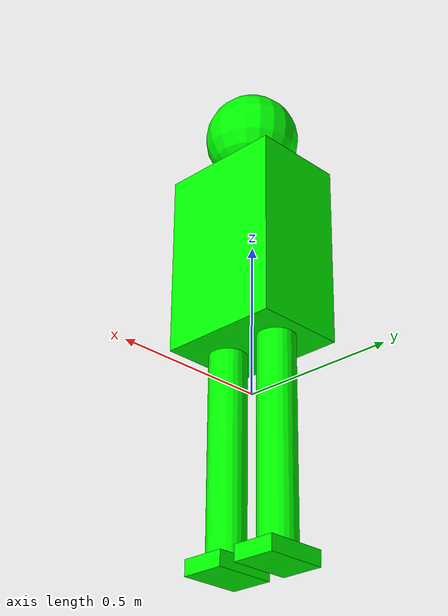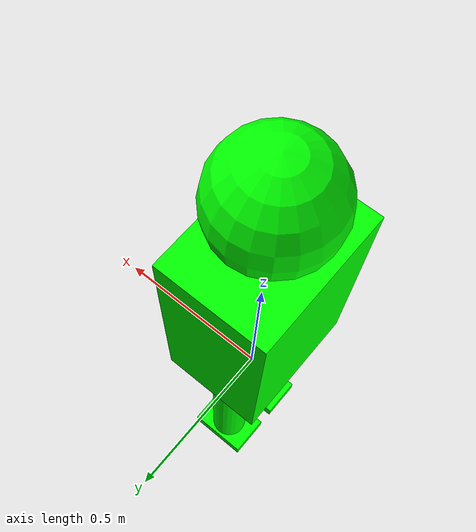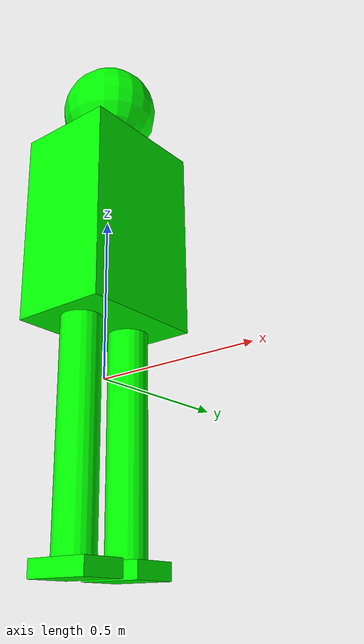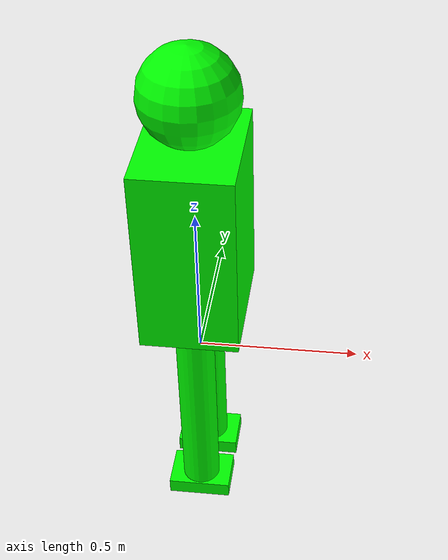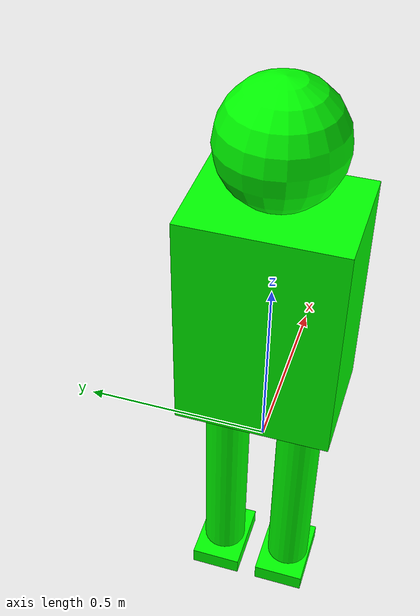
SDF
<?xml version='1.0'?>
<sdf version='1.7'>
  <model name='HumanoidRobot'>
    <link name='link_1'>
      <inertial>
        <mass>1</mass>
        <inertia>
          <ixx>0.166667</ixx>
          <ixy>0</ixy>
          <ixz>0</ixz>
          <iyy>0.166667</iyy>
          <iyz>0</iyz>
          <izz>0.166667</izz>
        </inertia>
        <pose>0 0 0 0 -0 0</pose>
      </inertial>
      <pose>0 -0.000833 0.458333 0 -0 0</pose>
      <gravity>1</gravity>
      <self_collide>0</self_collide>
      <kinematic>0</kinematic>
      <enable_wind>0</enable_wind>
      <visual name='visual'>
        <pose>0 0 0 0 -0 0</pose>
        <geometry>
          <box>
            <size>0.3 0.4 0.6</size>
          </box>
        </geometry>
        <material>
          <lighting>1</lighting>
          <script>
            <uri>file://media/materials/scripts/gazebo.material</uri>
            <name>Gazebo/Grey</name>
          </script>
          <shader type='pixel'>
            <normal_map>__default__</normal_map>
          </shader>
          <ambient>0 1 0 1</ambient>
          <diffuse>0.7 0.7 0.7 1</diffuse>
          <specular>0.01 0.01 0.01 1</specular>
          <emissive>0 0 0 1</emissive>
        </material>
        <transparency>0</transparency>
        <cast_shadows>1</cast_shadows>
      </visual>
      <collision name='collision'>
        <laser_retro>0</laser_retro>
        <max_contacts>10</max_contacts>
        <pose>0 0 0 0 -0 0</pose>
        <geometry>
          <box>
            <size>0.3 0.4 0.6</size>
          </box>
        </geometry>
        <surface>
          <friction>
            <ode>
              <mu>1</mu>
              <mu2>1</mu2>
              <fdir1>0 0 0</fdir1>
              <slip1>0</slip1>
              <slip2>0</slip2>
            </ode>
            <torsional>
              <coefficient>1</coefficient>
              <patch_radius>0</patch_radius>
              <surface_radius>0</surface_radius>
              <use_patch_radius>1</use_patch_radius>
              <ode>
                <slip>0</slip>
              </ode>
            </torsional>
          </friction>
          <bounce>
            <restitution_coefficient>0</restitution_coefficient>
            <threshold>1e+06</threshold>
          </bounce>
          <contact>
            <collide_without_contact>0</collide_without_contact>
            <collide_without_contact_bitmask>1</collide_without_contact_bitmask>
            <collide_bitmask>1</collide_bitmask>
            <ode>
              <soft_cfm>0</soft_cfm>
              <soft_erp>0.2</soft_erp>
              <kp>1e+13</kp>
              <kd>1</kd>
              <max_vel>0.01</max_vel>
              <min_depth>0</min_depth>
            </ode>
            <bullet>
              <split_impulse>1</split_impulse>
              <split_impulse_penetration_threshold>-0.01</split_impulse_penetration_threshold>
              <soft_cfm>0</soft_cfm>
              <soft_erp>0.2</soft_erp>
              <kp>1e+13</kp>
              <kd>1</kd>
            </bullet>
          </contact>
        </surface>
      </collision>
    </link>
    <link name='link_2'>
      <inertial>
        <mass>1</mass>
        <inertia>
          <ixx>0.145833</ixx>
          <ixy>0</ixy>
          <ixz>0</ixz>
          <iyy>0.145833</iyy>
          <iyz>0</iyz>
          <izz>0.125</izz>
        </inertia>
        <pose>0 0 0 0 -0 0</pose>
      </inertial>
      <pose>0 -0.100833 -0.166667 0 -0 0</pose>
      <gravity>1</gravity>
      <self_collide>0</self_collide>
      <kinematic>0</kinematic>
      <enable_wind>0</enable_wind>
      <visual name='visual'>
        <pose>0 0 0 0 -0 0</pose>
        <geometry>
          <cylinder>
            <radius>0.06</radius>
            <length>0.65</length>
          </cylinder>
        </geometry>
        <material>
          <lighting>1</lighting>
          <script>
            <uri>file://media/materials/scripts/gazebo.material</uri>
            <name>Gazebo/Grey</name>
          </script>
          <shader type='pixel'>
            <normal_map>__default__</normal_map>
          </shader>
          <ambient>0 1 0 1</ambient>
          <diffuse>0.7 0.7 0.7 1</diffuse>
          <specular>0.01 0.01 0.01 1</specular>
          <emissive>0 0 0 1</emissive>
        </material>
        <transparency>0</transparency>
        <cast_shadows>1</cast_shadows>
      </visual>
      <collision name='collision'>
        <laser_retro>0</laser_retro>
        <max_contacts>10</max_contacts>
        <pose>0 0 0 0 -0 0</pose>
        <geometry>
          <cylinder>
            <radius>0.06</radius>
            <length>0.65</length>
          </cylinder>
        </geometry>
        <surface>
          <friction>
            <ode>
              <mu>1</mu>
              <mu2>1</mu2>
              <fdir1>0 0 0</fdir1>
              <slip1>0</slip1>
              <slip2>0</slip2>
            </ode>
            <torsional>
              <coefficient>1</coefficient>
              <patch_radius>0</patch_radius>
              <surface_radius>0</surface_radius>
              <use_patch_radius>1</use_patch_radius>
              <ode>
                <slip>0</slip>
              </ode>
            </torsional>
          </friction>
          <bounce>
            <restitution_coefficient>0</restitution_coefficient>
            <threshold>1e+06</threshold>
          </bounce>
          <contact>
            <collide_without_contact>0</collide_without_contact>
            <collide_without_contact_bitmask>1</collide_without_contact_bitmask>
            <collide_bitmask>1</collide_bitmask>
            <ode>
              <soft_cfm>0</soft_cfm>
              <soft_erp>0.2</soft_erp>
              <kp>1e+13</kp>
              <kd>1</kd>
              <max_vel>0.01</max_vel>
              <min_depth>0</min_depth>
            </ode>
            <bullet>
              <split_impulse>1</split_impulse>
              <split_impulse_penetration_threshold>-0.01</split_impulse_penetration_threshold>
              <soft_cfm>0</soft_cfm>
              <soft_erp>0.2</soft_erp>
              <kp>1e+13</kp>
              <kd>1</kd>
            </bullet>
          </contact>
        </surface>
      </collision>
    </link>
    <link name='link_2_clone'>
      <inertial>
        <mass>1</mass>
        <inertia>
          <ixx>0.145833</ixx>
          <ixy>0</ixy>
          <ixz>0</ixz>
          <iyy>0.145833</iyy>
          <iyz>0</iyz>
          <izz>0.125</izz>
        </inertia>
        <pose>0 0 0 0 -0 0</pose>
      </inertial>
      <pose>0 0.099167 -0.166667 0 -0 0</pose>
      <gravity>1</gravity>
      <self_collide>0</self_collide>
      <kinematic>0</kinematic>
      <enable_wind>0</enable_wind>
      <visual name='visual'>
        <pose>0 0 0 0 -0 0</pose>
        <geometry>
          <cylinder>
            <radius>0.06</radius>
            <length>0.65</length>
          </cylinder>
        </geometry>
        <material>
          <lighting>1</lighting>
          <script>
            <uri>file://media/materials/scripts/gazebo.material</uri>
            <name>Gazebo/Grey</name>
          </script>
          <shader type='pixel'>
            <normal_map>__default__</normal_map>
          </shader>
          <ambient>0 1 0 1</ambient>
          <diffuse>0.7 0.7 0.7 1</diffuse>
          <specular>0.01 0.01 0.01 1</specular>
          <emissive>0 0 0 1</emissive>
        </material>
        <transparency>0</transparency>
        <cast_shadows>1</cast_shadows>
      </visual>
      <collision name='collision'>
        <laser_retro>0</laser_retro>
        <max_contacts>10</max_contacts>
        <pose>0 0 0 0 -0 0</pose>
        <geometry>
          <cylinder>
            <radius>0.06</radius>
            <length>0.65</length>
          </cylinder>
        </geometry>
        <surface>
          <friction>
            <ode>
              <mu>1</mu>
              <mu2>1</mu2>
              <fdir1>0 0 0</fdir1>
              <slip1>0</slip1>
              <slip2>0</slip2>
            </ode>
            <torsional>
              <coefficient>1</coefficient>
              <patch_radius>0</patch_radius>
              <surface_radius>0</surface_radius>
              <use_patch_radius>1</use_patch_radius>
              <ode>
                <slip>0</slip>
              </ode>
            </torsional>
          </friction>
          <bounce>
            <restitution_coefficient>0</restitution_coefficient>
            <threshold>1e+06</threshold>
          </bounce>
          <contact>
            <collide_without_contact>0</collide_without_contact>
            <collide_without_contact_bitmask>1</collide_without_contact_bitmask>
            <collide_bitmask>1</collide_bitmask>
            <ode>
              <soft_cfm>0</soft_cfm>
              <soft_erp>0.2</soft_erp>
              <kp>1e+13</kp>
              <kd>1</kd>
              <max_vel>0.01</max_vel>
              <min_depth>0</min_depth>
            </ode>
            <bullet>
              <split_impulse>1</split_impulse>
              <split_impulse_penetration_threshold>-0.01</split_impulse_penetration_threshold>
              <soft_cfm>0</soft_cfm>
              <soft_erp>0.2</soft_erp>
              <kp>1e+13</kp>
              <kd>1</kd>
            </bullet>
          </contact>
        </surface>
      </collision>
    </link>
    <link name='link_3'>
      <inertial>
        <mass>1</mass>
        <inertia>
          <ixx>0.166667</ixx>
          <ixy>0</ixy>
          <ixz>0</ixz>
          <iyy>0.166667</iyy>
          <iyz>0</iyz>
          <izz>0.166667</izz>
        </inertia>
        <pose>0 0 0 0 -0 0</pose>
      </inertial>
      <pose>0 -0.095833 -0.516667 0 -0 0</pose>
      <gravity>1</gravity>
      <self_collide>0</self_collide>
      <kinematic>0</kinematic>
      <enable_wind>0</enable_wind>
      <visual name='visual'>
        <pose>0 0 0 0 -0 0</pose>
        <geometry>
          <box>
            <size>0.2 0.14 0.05</size>
          </box>
        </geometry>
        <material>
          <lighting>1</lighting>
          <script>
            <uri>file://media/materials/scripts/gazebo.material</uri>
            <name>Gazebo/Grey</name>
          </script>
          <shader type='pixel'>
            <normal_map>__default__</normal_map>
          </shader>
          <ambient>0 1 0 1</ambient>
          <diffuse>0.7 0.7 0.7 1</diffuse>
          <specular>0.01 0.01 0.01 1</specular>
          <emissive>0 0 0 1</emissive>
        </material>
        <transparency>0</transparency>
        <cast_shadows>1</cast_shadows>
      </visual>
      <collision name='collision'>
        <laser_retro>0</laser_retro>
        <max_contacts>10</max_contacts>
        <pose>0 0 0 0 -0 0</pose>
        <geometry>
          <box>
            <size>0.2 0.14 0.05</size>
          </box>
        </geometry>
        <surface>
          <friction>
            <ode>
              <mu>1</mu>
              <mu2>1</mu2>
              <fdir1>0 0 0</fdir1>
              <slip1>0</slip1>
              <slip2>0</slip2>
            </ode>
            <torsional>
              <coefficient>1</coefficient>
              <patch_radius>0</patch_radius>
              <surface_radius>0</surface_radius>
              <use_patch_radius>1</use_patch_radius>
              <ode>
                <slip>0</slip>
              </ode>
            </torsional>
          </friction>
          <bounce>
            <restitution_coefficient>0</restitution_coefficient>
            <threshold>1e+06</threshold>
          </bounce>
          <contact>
            <collide_without_contact>0</collide_without_contact>
            <collide_without_contact_bitmask>1</collide_without_contact_bitmask>
            <collide_bitmask>1</collide_bitmask>
            <ode>
              <soft_cfm>0</soft_cfm>
              <soft_erp>0.2</soft_erp>
              <kp>1e+13</kp>
              <kd>1</kd>
              <max_vel>0.01</max_vel>
              <min_depth>0</min_depth>
            </ode>
            <bullet>
              <split_impulse>1</split_impulse>
              <split_impulse_penetration_threshold>-0.01</split_impulse_penetration_threshold>
              <soft_cfm>0</soft_cfm>
              <soft_erp>0.2</soft_erp>
              <kp>1e+13</kp>
              <kd>1</kd>
            </bullet>
          </contact>
        </surface>
      </collision>
    </link>
    <link name='link_3_clone'>
      <inertial>
        <mass>1</mass>
        <inertia>
          <ixx>0.166667</ixx>
          <ixy>0</ixy>
          <ixz>0</ixz>
          <iyy>0.166667</iyy>
          <iyz>0</iyz>
          <izz>0.166667</izz>
        </inertia>
        <pose>0 0 0 0 -0 0</pose>
      </inertial>
      <pose>0 0.099167 -0.516667 0 -0 0</pose>
      <gravity>1</gravity>
      <self_collide>0</self_collide>
      <kinematic>0</kinematic>
      <enable_wind>0</enable_wind>
      <visual name='visual'>
        <pose>0 0 0 0 -0 0</pose>
        <geometry>
          <box>
            <size>0.2 0.14 0.05</size>
          </box>
        </geometry>
        <material>
          <lighting>1</lighting>
          <script>
            <uri>file://media/materials/scripts/gazebo.material</uri>
            <name>Gazebo/Grey</name>
          </script>
          <shader type='pixel'>
            <normal_map>__default__</normal_map>
          </shader>
          <ambient>0 1 0 1</ambient>
          <diffuse>0.7 0.7 0.7 1</diffuse>
          <specular>0.01 0.01 0.01 1</specular>
          <emissive>0 0 0 1</emissive>
        </material>
        <transparency>0</transparency>
        <cast_shadows>1</cast_shadows>
      </visual>
      <collision name='collision'>
        <laser_retro>0</laser_retro>
        <max_contacts>10</max_contacts>
        <pose>0 0 0 0 -0 0</pose>
        <geometry>
          <box>
            <size>0.2 0.14 0.05</size>
          </box>
        </geometry>
        <surface>
          <friction>
            <ode>
              <mu>1</mu>
              <mu2>1</mu2>
              <fdir1>0 0 0</fdir1>
              <slip1>0</slip1>
              <slip2>0</slip2>
            </ode>
            <torsional>
              <coefficient>1</coefficient>
              <patch_radius>0</patch_radius>
              <surface_radius>0</surface_radius>
              <use_patch_radius>1</use_patch_radius>
              <ode>
                <slip>0</slip>
              </ode>
            </torsional>
          </friction>
          <bounce>
            <restitution_coefficient>0</restitution_coefficient>
            <threshold>1e+06</threshold>
          </bounce>
          <contact>
            <collide_without_contact>0</collide_without_contact>
            <collide_without_contact_bitmask>1</collide_without_contact_bitmask>
            <collide_bitmask>1</collide_bitmask>
            <ode>
              <soft_cfm>0</soft_cfm>
              <soft_erp>0.2</soft_erp>
              <kp>1e+13</kp>
              <kd>1</kd>
              <max_vel>0.01</max_vel>
              <min_depth>0</min_depth>
            </ode>
            <bullet>
              <split_impulse>1</split_impulse>
              <split_impulse_penetration_threshold>-0.01</split_impulse_penetration_threshold>
              <soft_cfm>0</soft_cfm>
              <soft_erp>0.2</soft_erp>
              <kp>1e+13</kp>
              <kd>1</kd>
            </bullet>
          </contact>
        </surface>
      </collision>
    </link>
    <link name='link_4'>
      <inertial>
        <mass>1</mass>
        <inertia>
          <ixx>0.1</ixx>
          <ixy>0</ixy>
          <ixz>0</ixz>
          <iyy>0.1</iyy>
          <iyz>0</iyz>
          <izz>0.1</izz>
        </inertia>
        <pose>0 0 0 0 -0 0</pose>
      </inertial>
      <pose>0 -0.000833 0.908333 0 -0 0</pose>
      <gravity>1</gravity>
      <self_collide>0</self_collide>
      <kinematic>0</kinematic>
      <enable_wind>0</enable_wind>
      <visual name='visual'>
        <pose>0 0 0 0 -0 0</pose>
        <geometry>
          <sphere>
            <radius>0.15</radius>
          </sphere>
        </geometry>
        <material>
          <lighting>1</lighting>
          <script>
            <uri>file://media/materials/scripts/gazebo.material</uri>
            <name>Gazebo/Grey</name>
          </script>
          <shader type='pixel'>
            <normal_map>__default__</normal_map>
          </shader>
          <ambient>0 1 0 1</ambient>
          <diffuse>0.7 0.7 0.7 1</diffuse>
          <specular>0.01 0.01 0.01 1</specular>
          <emissive>0 0 0 1</emissive>
        </material>
        <transparency>0</transparency>
        <cast_shadows>1</cast_shadows>
      </visual>
      <collision name='collision'>
        <laser_retro>0</laser_retro>
        <max_contacts>10</max_contacts>
        <pose>0 0 0 0 -0 0</pose>
        <geometry>
          <sphere>
            <radius>0.15</radius>
          </sphere>
        </geometry>
        <surface>
          <friction>
            <ode>
              <mu>1</mu>
              <mu2>1</mu2>
              <fdir1>0 0 0</fdir1>
              <slip1>0</slip1>
              <slip2>0</slip2>
            </ode>
            <torsional>
              <coefficient>1</coefficient>
              <patch_radius>0</patch_radius>
              <surface_radius>0</surface_radius>
              <use_patch_radius>1</use_patch_radius>
              <ode>
                <slip>0</slip>
              </ode>
            </torsional>
          </friction>
          <bounce>
            <restitution_coefficient>0</restitution_coefficient>
            <threshold>1e+06</threshold>
          </bounce>
          <contact>
            <collide_without_contact>0</collide_without_contact>
            <collide_without_contact_bitmask>1</collide_without_contact_bitmask>
            <collide_bitmask>1</collide_bitmask>
            <ode>
              <soft_cfm>0</soft_cfm>
              <soft_erp>0.2</soft_erp>
              <kp>1e+13</kp>
              <kd>1</kd>
              <max_vel>0.01</max_vel>
              <min_depth>0</min_depth>
            </ode>
            <bullet>
              <split_impulse>1</split_impulse>
              <split_impulse_penetration_threshold>-0.01</split_impulse_penetration_threshold>
              <soft_cfm>0</soft_cfm>
              <soft_erp>0.2</soft_erp>
              <kp>1e+13</kp>
              <kd>1</kd>
            </bullet>
          </contact>
        </surface>
      </collision>
    </link>
    <joint name='link_1_JOINT_1' type='fixed'>
      <parent>link_1</parent>
      <child>link_2</child>
      <pose>0 0 0 0 -0 0</pose>
      <physics>
        <ode>
          <limit>
            <cfm>0</cfm>
            <erp>0.2</erp>
          </limit>
          <suspension>
            <cfm>0</cfm>
            <erp>0.2</erp>
          </suspension>
        </ode>
      </physics>
    </joint>
    <joint name='link_1_JOINT_2' type='fixed'>
      <parent>link_1</parent>
      <child>link_2_clone</child>
      <pose>0 0 0 0 -0 0</pose>
      <physics>
        <ode>
          <limit>
            <cfm>0</cfm>
            <erp>0.2</erp>
          </limit>
          <suspension>
            <cfm>0</cfm>
            <erp>0.2</erp>
          </suspension>
        </ode>
      </physics>
    </joint>
    <joint name='link_1_JOINT_7' type='fixed'>
      <parent>link_1</parent>
      <child>link_4</child>
      <pose>0 0 0 0 -0 0</pose>
      <physics>
        <ode>
          <limit>
            <cfm>0</cfm>
            <erp>0.2</erp>
          </limit>
          <suspension>
            <cfm>0</cfm>
            <erp>0.2</erp>
          </suspension>
        </ode>
      </physics>
    </joint>
    <joint name='link_2_JOINT_3' type='fixed'>
      <parent>link_2</parent>
      <child>link_3</child>
      <pose>0 0 0 0 -0 0</pose>
      <physics>
        <ode>
          <limit>
            <cfm>0</cfm>
            <erp>0.2</erp>
          </limit>
          <suspension>
            <cfm>0</cfm>
            <erp>0.2</erp>
          </suspension>
        </ode>
      </physics>
    </joint>
    <joint name='link_2_clone_JOINT_5' type='fixed'>
      <parent>link_2_clone</parent>
      <child>link_3_clone</child>
      <pose>0 0 0 0 -0 0</pose>
      <physics>
        <ode>
          <limit>
            <cfm>0</cfm>
            <erp>0.2</erp>
          </limit>
          <suspension>
            <cfm>0</cfm>
            <erp>0.2</erp>
          </suspension>
        </ode>
      </physics>
    </joint>
    <static>0</static>
    <allow_auto_disable>1</allow_auto_disable>
  </model>
</sdf>
